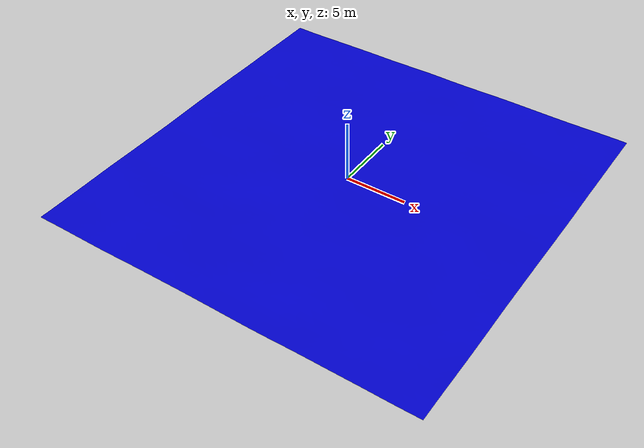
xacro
<?xml version="1.0"?>
<robot xmlns:xacro="http://www.ros.org/wiki/xacro" name="terrain">

    <xacro:property name="terrain_mesh_path" value="package://gazebo_sim/urdf/meshes/terrain3.dae"/>
    <xacro:property name="meshBlock">
        <mesh filename="${terrain_mesh_path}" scale="8 8 1"/>
    </xacro:property>

    <link name="world"/>

    <link name="terrain_link">
        <visual>
            <origin xyz="0 0 0" rpy="0 0 0"/>
            <geometry>
                <xacro:insert_block name="meshBlock"/>
            </geometry>
            <material name="blue">
                <color rgba="0 0 0.8 1"/>
            </material>
        </visual>

        <collision>
            <origin xyz="0 0 0" rpy="0 0 0"/>
            <geometry>
                <xacro:insert_block name="meshBlock"/>
            </geometry>
        </collision>

        <inertial>
            <mass value="1.0"/>
            <origin xyz="0 0 0" rpy="0 0 0"/>
            <inertia
                ixx="0.1" ixy="0.0" ixz="0.0"
                iyy="0.1" iyz="0.0"
                izz="0.1"/>
        </inertial>
    </link>

    <joint name="terrain_joint" type="fixed">
        <parent link="world"/>
        <child link="terrain_link"/>
        <origin xyz="0 0 0" rpy="0 0 0"/>
    </joint>

    <gazebo>
        <static>true</static>
    </gazebo>

</robot>
